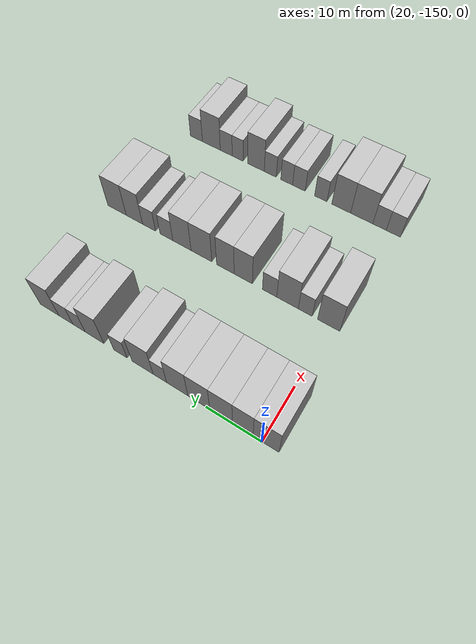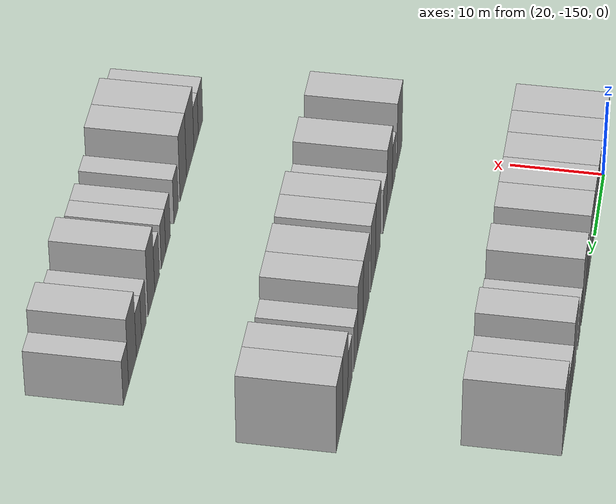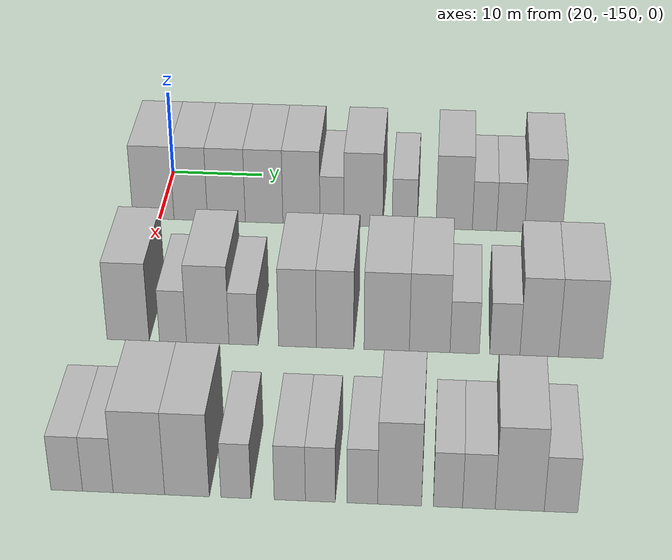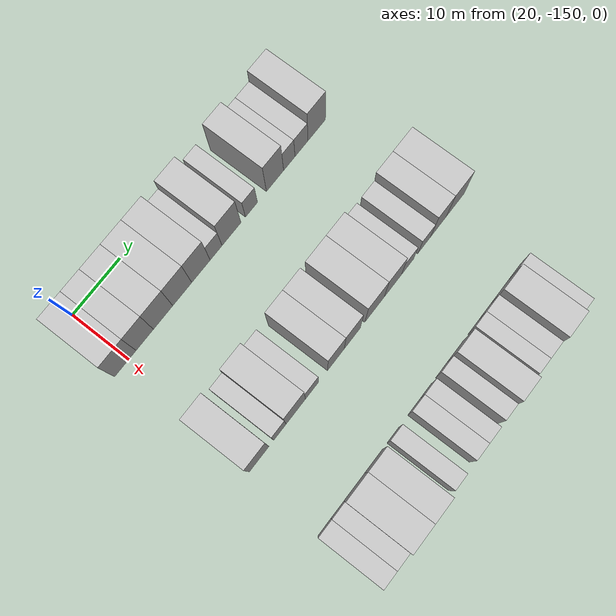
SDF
<sdf version="1.6">
 <world name="default">
  <model name="building_27">
   <static>1</static>
   <pose>25.0000 -150.6624 0 0.000000 0.000000 0.000000</pose>
   <link name="link">
    <pose>0 0 4.50 0 0 0</pose>
    <collision name="collision"><geometry><box><size>10.0000 4.4754 9.0000</size></box></geometry></collision>
    <visual name="visual">
     <cast_shadows>0</cast_shadows>
     <geometry><box><size>10.0000 4.4754 9.0000</size></box></geometry>
     <material>
      <script>
       <uri>model://HANNAS_wall/materials/scripts</uri>
       <uri>model://HANNAS_wall/materials/textures</uri>
       <name>vrc/HANNAS_wall</name>
      </script>
     </material>
    </visual>
   </link>
  </model>
  <model name="building_28">
   <static>1</static>
   <pose>25.0000 -146.6111 0 0.000000 0.000000 0.000000</pose>
   <link name="link">
    <pose>0 0 4.50 0 0 0</pose>
    <collision name="collision"><geometry><box><size>10.0000 3.6270 9.0000</size></box></geometry></collision>
    <visual name="visual">
     <cast_shadows>0</cast_shadows>
     <geometry><box><size>10.0000 3.6270 9.0000</size></box></geometry>
     <material>
      <script>
       <uri>model://HANNAS_wall/materials/scripts</uri>
       <uri>model://HANNAS_wall/materials/textures</uri>
       <name>vrc/HANNAS_wall</name>
      </script>
     </material>
    </visual>
   </link>
  </model>
  <model name="building_29">
   <static>1</static>
   <pose>25.0000 -142.7495 0 0.000000 0.000000 0.000000</pose>
   <link name="link">
    <pose>0 0 4.50 0 0 0</pose>
    <collision name="collision"><geometry><box><size>10.0000 4.0963 9.0000</size></box></geometry></collision>
    <visual name="visual">
     <cast_shadows>0</cast_shadows>
     <geometry><box><size>10.0000 4.0963 9.0000</size></box></geometry>
     <material>
      <script>
       <uri>model://HANNAS_wall/materials/scripts</uri>
       <uri>model://HANNAS_wall/materials/textures</uri>
       <name>vrc/HANNAS_wall</name>
      </script>
     </material>
    </visual>
   </link>
  </model>
  <model name="building_30">
   <static>1</static>
   <pose>25.0000 -138.6701 0 0.000000 0.000000 0.000000</pose>
   <link name="link">
    <pose>0 0 4.50 0 0 0</pose>
    <collision name="collision"><geometry><box><size>10.0000 4.0625 9.0000</size></box></geometry></collision>
    <visual name="visual">
     <cast_shadows>0</cast_shadows>
     <geometry><box><size>10.0000 4.0625 9.0000</size></box></geometry>
     <material>
      <script>
       <uri>model://HANNAS_wall/materials/scripts</uri>
       <uri>model://HANNAS_wall/materials/textures</uri>
       <name>vrc/HANNAS_wall</name>
      </script>
     </material>
    </visual>
   </link>
  </model>
  <model name="building_31">
   <static>1</static>
   <pose>25.0000 -134.6421 0 0.000000 0.000000 0.000000</pose>
   <link name="link">
    <pose>0 0 4.50 0 0 0</pose>
    <collision name="collision"><geometry><box><size>10.0000 3.9935 9.0000</size></box></geometry></collision>
    <visual name="visual">
     <cast_shadows>0</cast_shadows>
     <geometry><box><size>10.0000 3.9935 9.0000</size></box></geometry>
     <material>
      <script>
       <uri>model://HANNAS_wall/materials/scripts</uri>
       <uri>model://HANNAS_wall/materials/textures</uri>
       <name>vrc/HANNAS_wall</name>
      </script>
     </material>
    </visual>
   </link>
  </model>
  <model name="building_32">
   <static>1</static>
   <pose>25.0000 -131.3513 0 0.000000 0.000000 0.000000</pose>
   <link name="link">
    <pose>0 0 3.00 0 0 0</pose>
    <collision name="collision"><geometry><box><size>10.0000 2.5881 6.0000</size></box></geometry></collision>
    <visual name="visual">
     <cast_shadows>0</cast_shadows>
     <geometry><box><size>10.0000 2.5881 6.0000</size></box></geometry>
     <material>
      <script>
       <uri>model://HANNAS_wall/materials/scripts</uri>
       <uri>model://HANNAS_wall/materials/textures</uri>
       <name>vrc/HANNAS_wall</name>
      </script>
     </material>
    </visual>
   </link>
  </model>
  <model name="building_33">
   <static>1</static>
   <pose>25.0000 -127.9777 0 0.000000 0.000000 0.000000</pose>
   <link name="link">
    <pose>0 0 4.50 0 0 0</pose>
    <collision name="collision"><geometry><box><size>10.0000 4.1589 9.0000</size></box></geometry></collision>
    <visual name="visual">
     <cast_shadows>0</cast_shadows>
     <geometry><box><size>10.0000 4.1589 9.0000</size></box></geometry>
     <material>
      <script>
       <uri>model://HANNAS_wall/materials/scripts</uri>
       <uri>model://HANNAS_wall/materials/textures</uri>
       <name>vrc/HANNAS_wall</name>
      </script>
     </material>
    </visual>
   </link>
  </model>
  <model name="building_34">
   <static>1</static>
   <pose>25.0000 -123.5564 0 0.000000 0.000000 0.000000</pose>
   <link name="link">
    <pose>0 0 3.00 0 0 0</pose>
    <collision name="collision"><geometry><box><size>10.0000 2.6837 6.0000</size></box></geometry></collision>
    <visual name="visual">
     <cast_shadows>0</cast_shadows>
     <geometry><box><size>10.0000 2.6837 6.0000</size></box></geometry>
     <material>
      <script>
       <uri>model://HANNAS_wall/materials/scripts</uri>
       <uri>model://HANNAS_wall/materials/textures</uri>
       <name>vrc/HANNAS_wall</name>
      </script>
     </material>
    </visual>
   </link>
  </model>
  <model name="building_35">
   <static>1</static>
   <pose>25.0000 -118.2738 0 0.000000 0.000000 0.000000</pose>
   <link name="link">
    <pose>0 0 4.50 0 0 0</pose>
    <collision name="collision"><geometry><box><size>10.0000 3.8815 9.0000</size></box></geometry></collision>
    <visual name="visual">
     <cast_shadows>0</cast_shadows>
     <geometry><box><size>10.0000 3.8815 9.0000</size></box></geometry>
     <material>
      <script>
       <uri>model://HANNAS_wall/materials/scripts</uri>
       <uri>model://HANNAS_wall/materials/textures</uri>
       <name>vrc/HANNAS_wall</name>
      </script>
     </material>
    </visual>
   </link>
  </model>
  <model name="building_36">
   <static>1</static>
   <pose>25.0000 -115.0420 0 0.000000 0.000000 0.000000</pose>
   <link name="link">
    <pose>0 0 3.00 0 0 0</pose>
    <collision name="collision"><geometry><box><size>10.0000 2.5822 6.0000</size></box></geometry></collision>
    <visual name="visual">
     <cast_shadows>0</cast_shadows>
     <geometry><box><size>10.0000 2.5822 6.0000</size></box></geometry>
     <material>
      <script>
       <uri>model://HANNAS_wall/materials/scripts</uri>
       <uri>model://HANNAS_wall/materials/textures</uri>
       <name>vrc/HANNAS_wall</name>
      </script>
     </material>
    </visual>
   </link>
  </model>
  <model name="building_37">
   <static>1</static>
   <pose>25.0000 -112.2602 0 0.000000 0.000000 0.000000</pose>
   <link name="link">
    <pose>0 0 3.00 0 0 0</pose>
    <collision name="collision"><geometry><box><size>10.0000 2.9813 6.0000</size></box></geometry></collision>
    <visual name="visual">
     <cast_shadows>0</cast_shadows>
     <geometry><box><size>10.0000 2.9813 6.0000</size></box></geometry>
     <material>
      <script>
       <uri>model://HANNAS_wall/materials/scripts</uri>
       <uri>model://HANNAS_wall/materials/textures</uri>
       <name>vrc/HANNAS_wall</name>
      </script>
     </material>
    </visual>
   </link>
  </model>
  <model name="building_38">
   <static>1</static>
   <pose>25.0000 -108.7524 0 0.000000 0.000000 0.000000</pose>
   <link name="link">
    <pose>0 0 4.50 0 0 0</pose>
    <collision name="collision"><geometry><box><size>10.0000 4.0343 9.0000</size></box></geometry></collision>
    <visual name="visual">
     <cast_shadows>0</cast_shadows>
     <geometry><box><size>10.0000 4.0343 9.0000</size></box></geometry>
     <material>
      <script>
       <uri>model://HANNAS_wall/materials/scripts</uri>
       <uri>model://HANNAS_wall/materials/textures</uri>
       <name>vrc/HANNAS_wall</name>
      </script>
     </material>
    </visual>
   </link>
  </model>
  <model name="building_161">
   <static>1</static>
   <pose>47.0000 -149.6338 0 0.000000 0.000000 0.000000</pose>
   <link name="link">
    <pose>0 0 4.50 0 0 0</pose>
    <collision name="collision"><geometry><box><size>10.0000 4.1280 9.0000</size></box></geometry></collision>
    <visual name="visual">
     <cast_shadows>0</cast_shadows>
     <geometry><box><size>10.0000 4.1280 9.0000</size></box></geometry>
     <material>
      <script>
       <uri>model://HANNAS_wall/materials/scripts</uri>
       <uri>model://HANNAS_wall/materials/textures</uri>
       <name>vrc/HANNAS_wall</name>
      </script>
     </material>
    </visual>
   </link>
  </model>
  <model name="building_162">
   <static>1</static>
   <pose>47.0000 -145.2511 0 0.000000 0.000000 0.000000</pose>
   <link name="link">
    <pose>0 0 3.00 0 0 0</pose>
    <collision name="collision"><geometry><box><size>10.0000 2.6376 6.0000</size></box></geometry></collision>
    <visual name="visual">
     <cast_shadows>0</cast_shadows>
     <geometry><box><size>10.0000 2.6376 6.0000</size></box></geometry>
     <material>
      <script>
       <uri>model://HANNAS_wall/materials/scripts</uri>
       <uri>model://HANNAS_wall/materials/textures</uri>
       <name>vrc/HANNAS_wall</name>
      </script>
     </material>
    </visual>
   </link>
  </model>
  <model name="building_163">
   <static>1</static>
   <pose>47.0000 -141.8586 0 0.000000 0.000000 0.000000</pose>
   <link name="link">
    <pose>0 0 4.50 0 0 0</pose>
    <collision name="collision"><geometry><box><size>10.0000 4.1474 9.0000</size></box></geometry></collision>
    <visual name="visual">
     <cast_shadows>0</cast_shadows>
     <geometry><box><size>10.0000 4.1474 9.0000</size></box></geometry>
     <material>
      <script>
       <uri>model://HANNAS_wall/materials/scripts</uri>
       <uri>model://HANNAS_wall/materials/textures</uri>
       <name>vrc/HANNAS_wall</name>
      </script>
     </material>
    </visual>
   </link>
  </model>
  <model name="building_164">
   <static>1</static>
   <pose>47.0000 -138.3750 0 0.000000 0.000000 0.000000</pose>
   <link name="link">
    <pose>0 0 3.00 0 0 0</pose>
    <collision name="collision"><geometry><box><size>10.0000 2.8198 6.0000</size></box></geometry></collision>
    <visual name="visual">
     <cast_shadows>0</cast_shadows>
     <geometry><box><size>10.0000 2.8198 6.0000</size></box></geometry>
     <material>
      <script>
       <uri>model://HANNAS_wall/materials/scripts</uri>
       <uri>model://HANNAS_wall/materials/textures</uri>
       <name>vrc/HANNAS_wall</name>
      </script>
     </material>
    </visual>
   </link>
  </model>
  <model name="building_165">
   <static>1</static>
   <pose>47.0000 -133.1307 0 0.000000 0.000000 0.000000</pose>
   <link name="link">
    <pose>0 0 4.50 0 0 0</pose>
    <collision name="collision"><geometry><box><size>10.0000 3.6687 9.0000</size></box></geometry></collision>
    <visual name="visual">
     <cast_shadows>0</cast_shadows>
     <geometry><box><size>10.0000 3.6687 9.0000</size></box></geometry>
     <material>
      <script>
       <uri>model://HANNAS_wall/materials/scripts</uri>
       <uri>model://HANNAS_wall/materials/textures</uri>
       <name>vrc/HANNAS_wall</name>
      </script>
     </material>
    </visual>
   </link>
  </model>
  <model name="building_166">
   <static>1</static>
   <pose>47.0000 -129.4941 0 0.000000 0.000000 0.000000</pose>
   <link name="link">
    <pose>0 0 4.50 0 0 0</pose>
    <collision name="collision"><geometry><box><size>10.0000 3.6045 9.0000</size></box></geometry></collision>
    <visual name="visual">
     <cast_shadows>0</cast_shadows>
     <geometry><box><size>10.0000 3.6045 9.0000</size></box></geometry>
     <material>
      <script>
       <uri>model://HANNAS_wall/materials/scripts</uri>
       <uri>model://HANNAS_wall/materials/textures</uri>
       <name>vrc/HANNAS_wall</name>
      </script>
     </material>
    </visual>
   </link>
  </model>
  <model name="building_167">
   <static>1</static>
   <pose>47.0000 -124.5105 0 0.000000 0.000000 0.000000</pose>
   <link name="link">
    <pose>0 0 4.50 0 0 0</pose>
    <collision name="collision"><geometry><box><size>10.0000 4.3628 9.0000</size></box></geometry></collision>
    <visual name="visual">
     <cast_shadows>0</cast_shadows>
     <geometry><box><size>10.0000 4.3628 9.0000</size></box></geometry>
     <material>
      <script>
       <uri>model://HANNAS_wall/materials/scripts</uri>
       <uri>model://HANNAS_wall/materials/textures</uri>
       <name>vrc/HANNAS_wall</name>
      </script>
     </material>
    </visual>
   </link>
  </model>
  <model name="building_168">
   <static>1</static>
   <pose>47.0000 -120.3743 0 0.000000 0.000000 0.000000</pose>
   <link name="link">
    <pose>0 0 4.50 0 0 0</pose>
    <collision name="collision"><geometry><box><size>10.0000 3.9097 9.0000</size></box></geometry></collision>
    <visual name="visual">
     <cast_shadows>0</cast_shadows>
     <geometry><box><size>10.0000 3.9097 9.0000</size></box></geometry>
     <material>
      <script>
       <uri>model://HANNAS_wall/materials/scripts</uri>
       <uri>model://HANNAS_wall/materials/textures</uri>
       <name>vrc/HANNAS_wall</name>
      </script>
     </material>
    </visual>
   </link>
  </model>
  <model name="building_169">
   <static>1</static>
   <pose>47.0000 -117.0163 0 0.000000 0.000000 0.000000</pose>
   <link name="link">
    <pose>0 0 3.00 0 0 0</pose>
    <collision name="collision"><geometry><box><size>10.0000 2.8061 6.0000</size></box></geometry></collision>
    <visual name="visual">
     <cast_shadows>0</cast_shadows>
     <geometry><box><size>10.0000 2.8061 6.0000</size></box></geometry>
     <material>
      <script>
       <uri>model://HANNAS_wall/materials/scripts</uri>
       <uri>model://HANNAS_wall/materials/textures</uri>
       <name>vrc/HANNAS_wall</name>
      </script>
     </material>
    </visual>
   </link>
  </model>
  <model name="building_170">
   <static>1</static>
   <pose>47.0000 -113.1659 0 0.000000 0.000000 0.000000</pose>
   <link name="link">
    <pose>0 0 3.00 0 0 0</pose>
    <collision name="collision"><geometry><box><size>10.0000 2.8948 6.0000</size></box></geometry></collision>
    <visual name="visual">
     <cast_shadows>0</cast_shadows>
     <geometry><box><size>10.0000 2.8948 6.0000</size></box></geometry>
     <material>
      <script>
       <uri>model://HANNAS_wall/materials/scripts</uri>
       <uri>model://HANNAS_wall/materials/textures</uri>
       <name>vrc/HANNAS_wall</name>
      </script>
     </material>
    </visual>
   </link>
  </model>
  <model name="building_171">
   <static>1</static>
   <pose>47.0000 -109.8784 0 0.000000 0.000000 0.000000</pose>
   <link name="link">
    <pose>0 0 4.50 0 0 0</pose>
    <collision name="collision"><geometry><box><size>10.0000 3.6801 9.0000</size></box></geometry></collision>
    <visual name="visual">
     <cast_shadows>0</cast_shadows>
     <geometry><box><size>10.0000 3.6801 9.0000</size></box></geometry>
     <material>
      <script>
       <uri>model://HANNAS_wall/materials/scripts</uri>
       <uri>model://HANNAS_wall/materials/textures</uri>
       <name>vrc/HANNAS_wall</name>
      </script>
     </material>
    </visual>
   </link>
  </model>
  <model name="building_172">
   <static>1</static>
   <pose>47.0000 -105.9206 0 0.000000 0.000000 0.000000</pose>
   <link name="link">
    <pose>0 0 4.50 0 0 0</pose>
    <collision name="collision"><geometry><box><size>10.0000 4.2355 9.0000</size></box></geometry></collision>
    <visual name="visual">
     <cast_shadows>0</cast_shadows>
     <geometry><box><size>10.0000 4.2355 9.0000</size></box></geometry>
     <material>
      <script>
       <uri>model://HANNAS_wall/materials/scripts</uri>
       <uri>model://HANNAS_wall/materials/textures</uri>
       <name>vrc/HANNAS_wall</name>
      </script>
     </material>
    </visual>
   </link>
  </model>
  <model name="building_270">
   <static>1</static>
   <pose>69.0000 -151.2186 0 0.000000 0.000000 0.000000</pose>
   <link name="link">
    <pose>0 0 3.00 0 0 0</pose>
    <collision name="collision"><geometry><box><size>10.0000 2.7699 6.0000</size></box></geometry></collision>
    <visual name="visual">
     <cast_shadows>0</cast_shadows>
     <geometry><box><size>10.0000 2.7699 6.0000</size></box></geometry>
     <material>
      <script>
       <uri>model://HANNAS_wall/materials/scripts</uri>
       <uri>model://HANNAS_wall/materials/textures</uri>
       <name>vrc/HANNAS_wall</name>
      </script>
     </material>
    </visual>
   </link>
  </model>
  <model name="building_271">
   <static>1</static>
   <pose>69.0000 -148.4991 0 0.000000 0.000000 0.000000</pose>
   <link name="link">
    <pose>0 0 3.00 0 0 0</pose>
    <collision name="collision"><geometry><box><size>10.0000 2.6691 6.0000</size></box></geometry></collision>
    <visual name="visual">
     <cast_shadows>0</cast_shadows>
     <geometry><box><size>10.0000 2.6691 6.0000</size></box></geometry>
     <material>
      <script>
       <uri>model://HANNAS_wall/materials/scripts</uri>
       <uri>model://HANNAS_wall/materials/textures</uri>
       <name>vrc/HANNAS_wall</name>
      </script>
     </material>
    </visual>
   </link>
  </model>
  <model name="building_272">
   <static>1</static>
   <pose>69.0000 -144.9239 0 0.000000 0.000000 0.000000</pose>
   <link name="link">
    <pose>0 0 4.50 0 0 0</pose>
    <collision name="collision"><geometry><box><size>10.0000 4.4813 9.0000</size></box></geometry></collision>
    <visual name="visual">
     <cast_shadows>0</cast_shadows>
     <geometry><box><size>10.0000 4.4813 9.0000</size></box></geometry>
     <material>
      <script>
       <uri>model://HANNAS_wall/materials/scripts</uri>
       <uri>model://HANNAS_wall/materials/textures</uri>
       <name>vrc/HANNAS_wall</name>
      </script>
     </material>
    </visual>
   </link>
  </model>
  <model name="building_273">
   <static>1</static>
   <pose>69.0000 -140.7456 0 0.000000 0.000000 0.000000</pose>
   <link name="link">
    <pose>0 0 4.50 0 0 0</pose>
    <collision name="collision"><geometry><box><size>10.0000 3.8753 9.0000</size></box></geometry></collision>
    <visual name="visual">
     <cast_shadows>0</cast_shadows>
     <geometry><box><size>10.0000 3.8753 9.0000</size></box></geometry>
     <material>
      <script>
       <uri>model://HANNAS_wall/materials/scripts</uri>
       <uri>model://HANNAS_wall/materials/textures</uri>
       <name>vrc/HANNAS_wall</name>
      </script>
     </material>
    </visual>
   </link>
  </model>
  <model name="building_274">
   <static>1</static>
   <pose>69.0000 -136.5079 0 0.000000 0.000000 0.000000</pose>
   <link name="link">
    <pose>0 0 3.00 0 0 0</pose>
    <collision name="collision"><geometry><box><size>10.0000 2.6000 6.0000</size></box></geometry></collision>
    <visual name="visual">
     <cast_shadows>0</cast_shadows>
     <geometry><box><size>10.0000 2.6000 6.0000</size></box></geometry>
     <material>
      <script>
       <uri>model://HANNAS_wall/materials/scripts</uri>
       <uri>model://HANNAS_wall/materials/textures</uri>
       <name>vrc/HANNAS_wall</name>
      </script>
     </material>
    </visual>
   </link>
  </model>
  <model name="building_275">
   <static>1</static>
   <pose>69.0000 -131.8619 0 0.000000 0.000000 0.000000</pose>
   <link name="link">
    <pose>0 0 3.00 0 0 0</pose>
    <collision name="collision"><geometry><box><size>10.0000 2.6920 6.0000</size></box></geometry></collision>
    <visual name="visual">
     <cast_shadows>0</cast_shadows>
     <geometry><box><size>10.0000 2.6920 6.0000</size></box></geometry>
     <material>
      <script>
       <uri>model://HANNAS_wall/materials/scripts</uri>
       <uri>model://HANNAS_wall/materials/textures</uri>
       <name>vrc/HANNAS_wall</name>
      </script>
     </material>
    </visual>
   </link>
  </model>
  <model name="building_276">
   <static>1</static>
   <pose>69.0000 -129.2343 0 0.000000 0.000000 0.000000</pose>
   <link name="link">
    <pose>0 0 3.00 0 0 0</pose>
    <collision name="collision"><geometry><box><size>10.0000 2.5634 6.0000</size></box></geometry></collision>
    <visual name="visual">
     <cast_shadows>0</cast_shadows>
     <geometry><box><size>10.0000 2.5634 6.0000</size></box></geometry>
     <material>
      <script>
       <uri>model://HANNAS_wall/materials/scripts</uri>
       <uri>model://HANNAS_wall/materials/textures</uri>
       <name>vrc/HANNAS_wall</name>
      </script>
     </material>
    </visual>
   </link>
  </model>
  <model name="building_277">
   <static>1</static>
   <pose>69.0000 -125.6301 0 0.000000 0.000000 0.000000</pose>
   <link name="link">
    <pose>0 0 3.00 0 0 0</pose>
    <collision name="collision"><geometry><box><size>10.0000 2.6449 6.0000</size></box></geometry></collision>
    <visual name="visual">
     <cast_shadows>0</cast_shadows>
     <geometry><box><size>10.0000 2.6449 6.0000</size></box></geometry>
     <material>
      <script>
       <uri>model://HANNAS_wall/materials/scripts</uri>
       <uri>model://HANNAS_wall/materials/textures</uri>
       <name>vrc/HANNAS_wall</name>
      </script>
     </material>
    </visual>
   </link>
  </model>
  <model name="building_278">
   <static>1</static>
   <pose>69.0000 -122.4303 0 0.000000 0.000000 0.000000</pose>
   <link name="link">
    <pose>0 0 4.50 0 0 0</pose>
    <collision name="collision"><geometry><box><size>10.0000 3.7546 9.0000</size></box></geometry></collision>
    <visual name="visual">
     <cast_shadows>0</cast_shadows>
     <geometry><box><size>10.0000 3.7546 9.0000</size></box></geometry>
     <material>
      <script>
       <uri>model://HANNAS_wall/materials/scripts</uri>
       <uri>model://HANNAS_wall/materials/textures</uri>
       <name>vrc/HANNAS_wall</name>
      </script>
     </material>
    </visual>
   </link>
  </model>
  <model name="building_279">
   <static>1</static>
   <pose>69.0000 -118.3062 0 0.000000 0.000000 0.000000</pose>
   <link name="link">
    <pose>0 0 3.00 0 0 0</pose>
    <collision name="collision"><geometry><box><size>10.0000 2.4936 6.0000</size></box></geometry></collision>
    <visual name="visual">
     <cast_shadows>0</cast_shadows>
     <geometry><box><size>10.0000 2.4936 6.0000</size></box></geometry>
     <material>
      <script>
       <uri>model://HANNAS_wall/materials/scripts</uri>
       <uri>model://HANNAS_wall/materials/textures</uri>
       <name>vrc/HANNAS_wall</name>
      </script>
     </material>
    </visual>
   </link>
  </model>
  <model name="building_280">
   <static>1</static>
   <pose>69.0000 -115.6726 0 0.000000 0.000000 0.000000</pose>
   <link name="link">
    <pose>0 0 3.00 0 0 0</pose>
    <collision name="collision"><geometry><box><size>10.0000 2.7735 6.0000</size></box></geometry></collision>
    <visual name="visual">
     <cast_shadows>0</cast_shadows>
     <geometry><box><size>10.0000 2.7735 6.0000</size></box></geometry>
     <material>
      <script>
       <uri>model://HANNAS_wall/materials/scripts</uri>
       <uri>model://HANNAS_wall/materials/textures</uri>
       <name>vrc/HANNAS_wall</name>
      </script>
     </material>
    </visual>
   </link>
  </model>
  <model name="building_281">
   <static>1</static>
   <pose>69.0000 -112.1988 0 0.000000 0.000000 0.000000</pose>
   <link name="link">
    <pose>0 0 4.50 0 0 0</pose>
    <collision name="collision"><geometry><box><size>10.0000 4.1740 9.0000</size></box></geometry></collision>
    <visual name="visual">
     <cast_shadows>0</cast_shadows>
     <geometry><box><size>10.0000 4.1740 9.0000</size></box></geometry>
     <material>
      <script>
       <uri>model://HANNAS_wall/materials/scripts</uri>
       <uri>model://HANNAS_wall/materials/textures</uri>
       <name>vrc/HANNAS_wall</name>
      </script>
     </material>
    </visual>
   </link>
  </model>
  <model name="building_282">
   <static>1</static>
   <pose>69.0000 -108.6935 0 0.000000 0.000000 0.000000</pose>
   <link name="link">
    <pose>0 0 3.00 0 0 0</pose>
    <collision name="collision"><geometry><box><size>10.0000 2.8366 6.0000</size></box></geometry></collision>
    <visual name="visual">
     <cast_shadows>0</cast_shadows>
     <geometry><box><size>10.0000 2.8366 6.0000</size></box></geometry>
     <material>
      <script>
       <uri>model://HANNAS_wall/materials/scripts</uri>
       <uri>model://HANNAS_wall/materials/textures</uri>
       <name>vrc/HANNAS_wall</name>
      </script>
     </material>
    </visual>
   </link>
  </model>
 </world>
</sdf>
